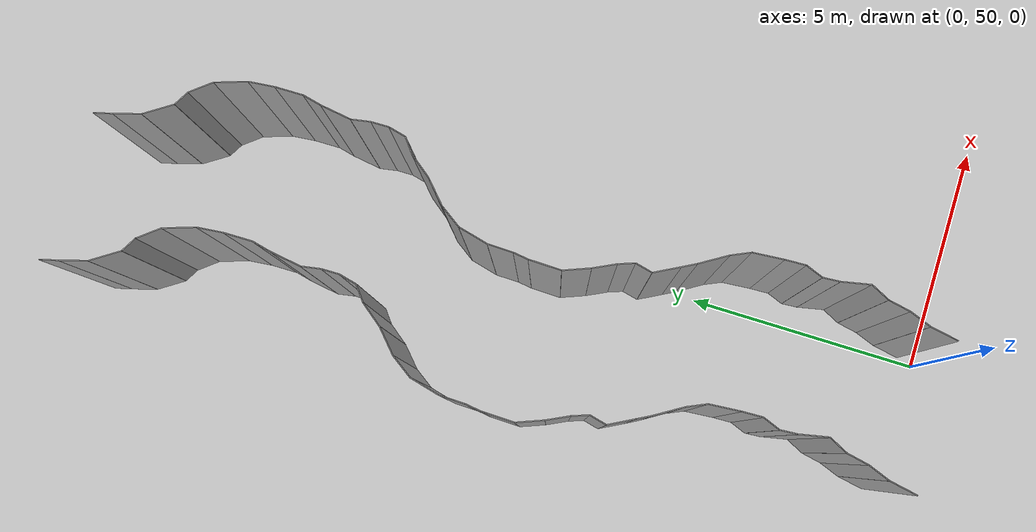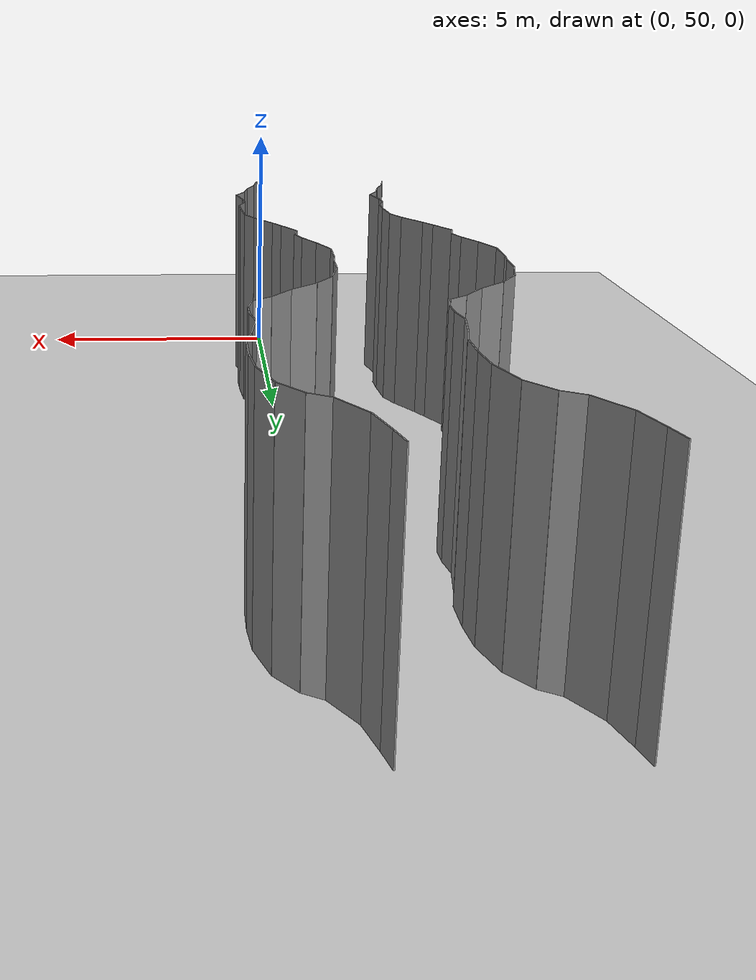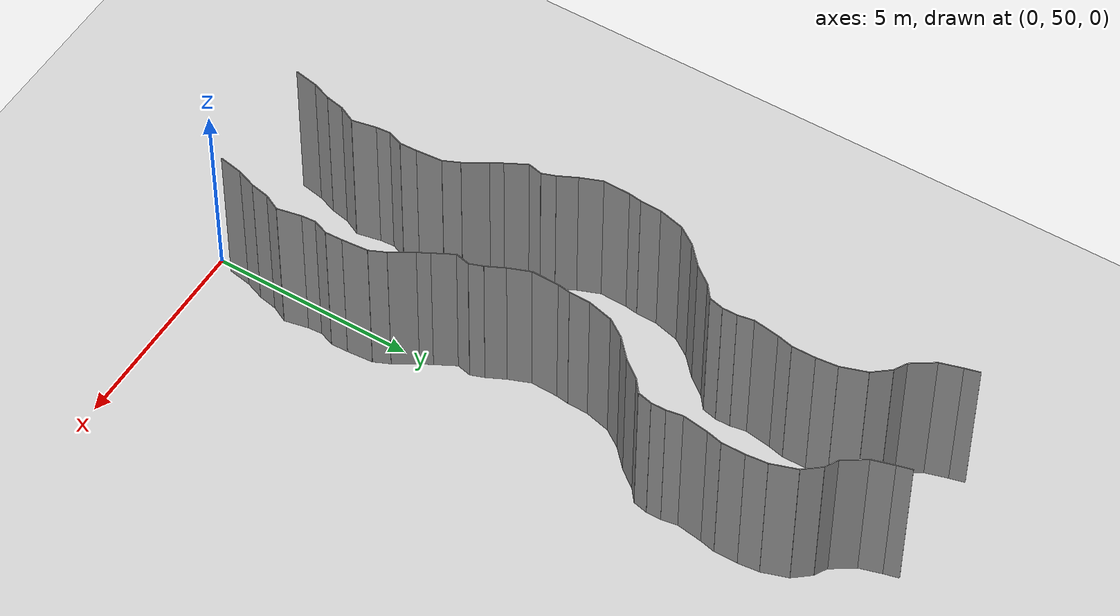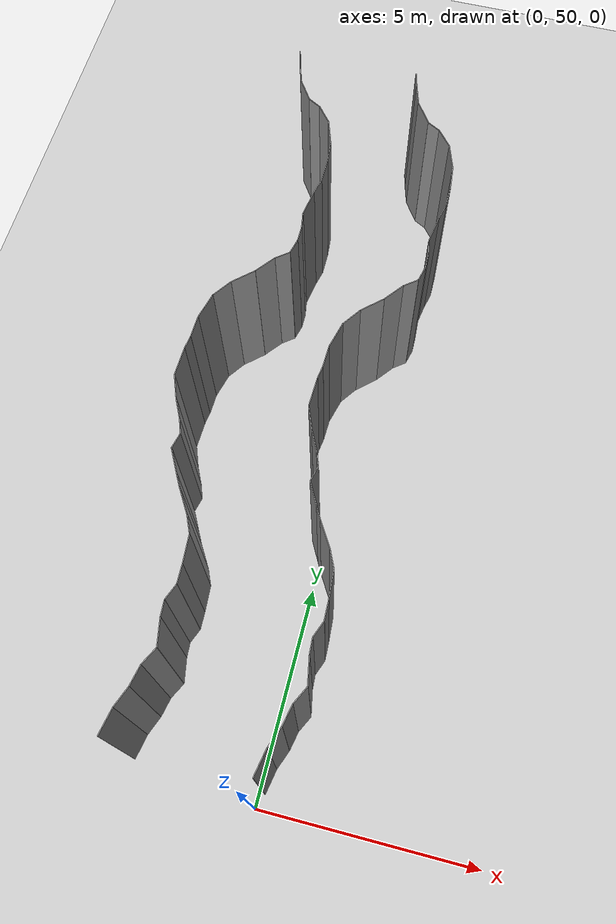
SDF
<sdf version="1.6">
 <world name="default">
  <model name="ground_plane">
   <static>1</static>
   <link name="link">
    <collision name="collision">
     <geometry><plane><normal>0 0 1</normal><size>200 200</size></plane></geometry>
     <surface><friction><ode><mu>100</mu><mu2>50</mu2></ode></friction></surface>
    </collision>
    <visual name="visual">
     <cast_shadows>0</cast_shadows>
     <geometry><plane><normal>0 0 1</normal><size>200 200</size></plane></geometry>
     <material>
      <script><uri>file://media/materials/scripts/gazebo.material</uri><name>Gazebo/Grey</name></script>
     </material>
    </visual>
   </link>
   <pose>0 100 0 0 -0 0</pose>
  </model>
  <model name="wall_224">
   <static>1</static>
   <pose>-2.8286769337761193 50.627891872682405 2 0 0 -0.18423424427518173</pose>
   <link name="link">
    <collision name="collision"><geometry><box><size>0.02 0.580149095409 4</size></box></geometry></collision>
    <visual name="visual">
     <material>
      <script><name>Gazebo/Grey</name><uri>file://media/materials/scripts/gazebo.material</uri></script>
     </material>
     <geometry><box><size>0.02 0.580149095409 4</size></box></geometry>
    </visual>
   </link>
  </model>
  <model name="wall_225">
   <static>1</static>
   <pose>0.17132306622388072 50.627891872682405 2 0 0 -0.18423424427518173</pose>
   <link name="link">
    <collision name="collision"><geometry><box><size>0.02 0.580149095409 4</size></box></geometry></collision>
    <visual name="visual">
     <material>
      <script><name>Gazebo/Grey</name><uri>file://media/materials/scripts/gazebo.material</uri></script>
     </material>
     <geometry><box><size>0.02 0.580149095409 4</size></box></geometry>
    </visual>
   </link>
  </model>
  <model name="wall_226">
   <static>1</static>
   <pose>-2.6917528820557632 51.13423837053062 2 0 0 -0.362101400546652</pose>
   <link name="link">
    <collision name="collision"><geometry><box><size>0.02 0.473036137834 4</size></box></geometry></collision>
    <visual name="visual">
     <material>
      <script><name>Gazebo/Grey</name><uri>file://media/materials/scripts/gazebo.material</uri></script>
     </material>
     <geometry><box><size>0.02 0.473036137834 4</size></box></geometry>
    </visual>
   </link>
  </model>
  <model name="wall_227">
   <static>1</static>
   <pose>0.30824711794423676 51.13423837053062 2 0 0 -0.362101400546652</pose>
   <link name="link">
    <collision name="collision"><geometry><box><size>0.02 0.473036137834 4</size></box></geometry></collision>
    <visual name="visual">
     <material>
      <script><name>Gazebo/Grey</name><uri>file://media/materials/scripts/gazebo.material</uri></script>
     </material>
     <geometry><box><size>0.02 0.473036137834 4</size></box></geometry>
    </visual>
   </link>
  </model>
  <model name="wall_228">
   <static>1</static>
   <pose>-2.563501841455428 51.57859780687657 2 0 0 -0.1966679591682121</pose>
   <link name="link">
    <collision name="collision"><geometry><box><size>0.02 0.455130505683 4</size></box></geometry></collision>
    <visual name="visual">
     <material>
      <script><name>Gazebo/Grey</name><uri>file://media/materials/scripts/gazebo.material</uri></script>
     </material>
     <geometry><box><size>0.02 0.455130505683 4</size></box></geometry>
    </visual>
   </link>
  </model>
  <model name="wall_229">
   <static>1</static>
   <pose>0.43649815854457197 51.57859780687657 2 0 0 -0.1966679591682121</pose>
   <link name="link">
    <collision name="collision"><geometry><box><size>0.02 0.455130505683 4</size></box></geometry></collision>
    <visual name="visual">
     <material>
      <script><name>Gazebo/Grey</name><uri>file://media/materials/scripts/gazebo.material</uri></script>
     </material>
     <geometry><box><size>0.02 0.455130505683 4</size></box></geometry>
    </visual>
   </link>
  </model>
  <model name="wall_230">
   <static>1</static>
   <pose>-2.423583382500638 51.992326976356004 2 0 0 -0.46438742453574205</pose>
   <link name="link">
    <collision name="collision"><geometry><box><size>0.02 0.426242031228 4</size></box></geometry></collision>
    <visual name="visual">
     <material>
      <script><name>Gazebo/Grey</name><uri>file://media/materials/scripts/gazebo.material</uri></script>
     </material>
     <geometry><box><size>0.02 0.426242031228 4</size></box></geometry>
    </visual>
   </link>
  </model>
  <model name="wall_231">
   <static>1</static>
   <pose>0.5764166174993619 51.992326976356004 2 0 0 -0.46438742453574205</pose>
   <link name="link">
    <collision name="collision"><geometry><box><size>0.02 0.426242031228 4</size></box></geometry></collision>
    <visual name="visual">
     <material>
      <script><name>Gazebo/Grey</name><uri>file://media/materials/scripts/gazebo.material</uri></script>
     </material>
     <geometry><box><size>0.02 0.426242031228 4</size></box></geometry>
    </visual>
   </link>
  </model>
  <model name="wall_232">
   <static>1</static>
   <pose>-2.3882785102778623 52.47499757940905 2 0 0 0.20305967393296098</pose>
   <link name="link">
    <collision name="collision"><geometry><box><size>0.02 0.59649539028 4</size></box></geometry></collision>
    <visual name="visual">
     <material>
      <script><name>Gazebo/Grey</name><uri>file://media/materials/scripts/gazebo.material</uri></script>
     </material>
     <geometry><box><size>0.02 0.59649539028 4</size></box></geometry>
    </visual>
   </link>
  </model>
  <model name="wall_233">
   <static>1</static>
   <pose>0.6117214897221377 52.47499757940905 2 0 0 0.20305967393296098</pose>
   <link name="link">
    <collision name="collision"><geometry><box><size>0.02 0.59649539028 4</size></box></geometry></collision>
    <visual name="visual">
     <material>
      <script><name>Gazebo/Grey</name><uri>file://media/materials/scripts/gazebo.material</uri></script>
     </material>
     <geometry><box><size>0.02 0.59649539028 4</size></box></geometry>
    </visual>
   </link>
  </model>
  <model name="wall_234">
   <static>1</static>
   <pose>-2.461127365312974 52.94002398206839 2 0 0 0.07333061164236196</pose>
   <link name="link">
    <collision name="collision"><geometry><box><size>0.02 0.34674480437 4</size></box></geometry></collision>
    <visual name="visual">
     <material>
      <script><name>Gazebo/Grey</name><uri>file://media/materials/scripts/gazebo.material</uri></script>
     </material>
     <geometry><box><size>0.02 0.34674480437 4</size></box></geometry>
    </visual>
   </link>
  </model>
  <model name="wall_235">
   <static>1</static>
   <pose>0.5388726346870261 52.94002398206839 2 0 0 0.07333061164236196</pose>
   <link name="link">
    <collision name="collision"><geometry><box><size>0.02 0.34674480437 4</size></box></geometry></collision>
    <visual name="visual">
     <material>
      <script><name>Gazebo/Grey</name><uri>file://media/materials/scripts/gazebo.material</uri></script>
     </material>
     <geometry><box><size>0.02 0.34674480437 4</size></box></geometry>
    </visual>
   </link>
  </model>
  <model name="wall_236">
   <static>1</static>
   <pose>-2.405460493102636 53.290769109215255 2 0 0 -0.3670244248531365</pose>
   <link name="link">
    <collision name="collision"><geometry><box><size>0.02 0.381055940114 4</size></box></geometry></collision>
    <visual name="visual">
     <material>
      <script><name>Gazebo/Grey</name><uri>file://media/materials/scripts/gazebo.material</uri></script>
     </material>
     <geometry><box><size>0.02 0.381055940114 4</size></box></geometry>
    </visual>
   </link>
  </model>
  <model name="wall_237">
   <static>1</static>
   <pose>0.5945395068973638 53.290769109215255 2 0 0 -0.3670244248531365</pose>
   <link name="link">
    <collision name="collision"><geometry><box><size>0.02 0.381055940114 4</size></box></geometry></collision>
    <visual name="visual">
     <material>
      <script><name>Gazebo/Grey</name><uri>file://media/materials/scripts/gazebo.material</uri></script>
     </material>
     <geometry><box><size>0.02 0.381055940114 4</size></box></geometry>
    </visual>
   </link>
  </model>
  <model name="wall_238">
   <static>1</static>
   <pose>-2.345247367321129 53.678215502802416 2 0 0 0.03889048941217032</pose>
   <link name="link">
    <collision name="collision"><geometry><box><size>0.02 0.419532691257 4</size></box></geometry></collision>
    <visual name="visual">
     <material>
      <script><name>Gazebo/Grey</name><uri>file://media/materials/scripts/gazebo.material</uri></script>
     </material>
     <geometry><box><size>0.02 0.419532691257 4</size></box></geometry>
    </visual>
   </link>
  </model>
  <model name="wall_239">
   <static>1</static>
   <pose>0.6547526326788708 53.678215502802416 2 0 0 0.03889048941217032</pose>
   <link name="link">
    <collision name="collision"><geometry><box><size>0.02 0.419532691257 4</size></box></geometry></collision>
    <visual name="visual">
     <material>
      <script><name>Gazebo/Grey</name><uri>file://media/materials/scripts/gazebo.material</uri></script>
     </material>
     <geometry><box><size>0.02 0.419532691257 4</size></box></geometry>
    </visual>
   </link>
  </model>
  <model name="wall_240">
   <static>1</static>
   <pose>-2.379041136549938 54.20516803432031 2 0 0 0.08061373334613624</pose>
   <link name="link">
    <collision name="collision"><geometry><box><size>0.02 0.636757484728 4</size></box></geometry></collision>
    <visual name="visual">
     <material>
      <script><name>Gazebo/Grey</name><uri>file://media/materials/scripts/gazebo.material</uri></script>
     </material>
     <geometry><box><size>0.02 0.636757484728 4</size></box></geometry>
    </visual>
   </link>
  </model>
  <model name="wall_241">
   <static>1</static>
   <pose>0.620958863450062 54.20516803432031 2 0 0 0.08061373334613624</pose>
   <link name="link">
    <collision name="collision"><geometry><box><size>0.02 0.636757484728 4</size></box></geometry></collision>
    <visual name="visual">
     <material>
      <script><name>Gazebo/Grey</name><uri>file://media/materials/scripts/gazebo.material</uri></script>
     </material>
     <geometry><box><size>0.02 0.636757484728 4</size></box></geometry>
    </visual>
   </link>
  </model>
  <model name="wall_242">
   <static>1</static>
   <pose>-2.493326375320523 54.71593024675746 2 0 0 0.42975237120318305</pose>
   <link name="link">
    <collision name="collision"><geometry><box><size>0.02 0.425528588681 4</size></box></geometry></collision>
    <visual name="visual">
     <material>
      <script><name>Gazebo/Grey</name><uri>file://media/materials/scripts/gazebo.material</uri></script>
     </material>
     <geometry><box><size>0.02 0.425528588681 4</size></box></geometry>
    </visual>
   </link>
  </model>
  <model name="wall_243">
   <static>1</static>
   <pose>0.5066736246794772 54.71593024675746 2 0 0 0.42975237120318305</pose>
   <link name="link">
    <collision name="collision"><geometry><box><size>0.02 0.425528588681 4</size></box></geometry></collision>
    <visual name="visual">
     <material>
      <script><name>Gazebo/Grey</name><uri>file://media/materials/scripts/gazebo.material</uri></script>
     </material>
     <geometry><box><size>0.02 0.425528588681 4</size></box></geometry>
    </visual>
   </link>
  </model>
  <model name="wall_244">
   <static>1</static>
   <pose>-2.7497497506080575 55.179395733147096 2 0 0 0.5559213344197211</pose>
   <link name="link">
    <collision name="collision"><geometry><box><size>0.02 0.635845148266 4</size></box></geometry></collision>
    <visual name="visual">
     <material>
      <script><name>Gazebo/Grey</name><uri>file://media/materials/scripts/gazebo.material</uri></script>
     </material>
     <geometry><box><size>0.02 0.635845148266 4</size></box></geometry>
    </visual>
   </link>
  </model>
  <model name="wall_245">
   <static>1</static>
   <pose>0.2502502493919425 55.179395733147096 2 0 0 0.5559213344197211</pose>
   <link name="link">
    <collision name="collision"><geometry><box><size>0.02 0.635845148266 4</size></box></geometry></collision>
    <visual name="visual">
     <material>
      <script><name>Gazebo/Grey</name><uri>file://media/materials/scripts/gazebo.material</uri></script>
     </material>
     <geometry><box><size>0.02 0.635845148266 4</size></box></geometry>
    </visual>
   </link>
  </model>
  <model name="wall_246">
   <static>1</static>
   <pose>-2.993416445667179 55.588345760556834 2 0 0 0.500045270697358</pose>
   <link name="link">
    <collision name="collision"><geometry><box><size>0.02 0.316563697601 4</size></box></geometry></collision>
    <visual name="visual">
     <material>
      <script><name>Gazebo/Grey</name><uri>file://media/materials/scripts/gazebo.material</uri></script>
     </material>
     <geometry><box><size>0.02 0.316563697601 4</size></box></geometry>
    </visual>
   </link>
  </model>
  <model name="wall_247">
   <static>1</static>
   <pose>0.0065835543328209845 55.588345760556834 2 0 0 0.500045270697358</pose>
   <link name="link">
    <collision name="collision"><geometry><box><size>0.02 0.316563697601 4</size></box></geometry></collision>
    <visual name="visual">
     <material>
      <script><name>Gazebo/Grey</name><uri>file://media/materials/scripts/gazebo.material</uri></script>
     </material>
     <geometry><box><size>0.02 0.316563697601 4</size></box></geometry>
    </visual>
   </link>
  </model>
  <model name="wall_248">
   <static>1</static>
   <pose>-3.2028115928954173 55.976138644152485 2 0 0 0.4923399696816713</pose>
   <link name="link">
    <collision name="collision"><geometry><box><size>0.02 0.5648721819 4</size></box></geometry></collision>
    <visual name="visual">
     <material>
      <script><name>Gazebo/Grey</name><uri>file://media/materials/scripts/gazebo.material</uri></script>
     </material>
     <geometry><box><size>0.02 0.5648721819 4</size></box></geometry>
    </visual>
   </link>
  </model>
  <model name="wall_249">
   <static>1</static>
   <pose>-0.20281159289541728 55.976138644152485 2 0 0 0.4923399696816713</pose>
   <link name="link">
    <collision name="collision"><geometry><box><size>0.02 0.5648721819 4</size></box></geometry></collision>
    <visual name="visual">
     <material>
      <script><name>Gazebo/Grey</name><uri>file://media/materials/scripts/gazebo.material</uri></script>
     </material>
     <geometry><box><size>0.02 0.5648721819 4</size></box></geometry>
    </visual>
   </link>
  </model>
  <model name="wall_250">
   <static>1</static>
   <pose>-3.2951565948110293 56.40173687648635 2 0 0 -0.22884436802210423</pose>
   <link name="link">
    <collision name="collision"><geometry><box><size>0.02 0.362875049032 4</size></box></geometry></collision>
    <visual name="visual">
     <material>
      <script><name>Gazebo/Grey</name><uri>file://media/materials/scripts/gazebo.material</uri></script>
     </material>
     <geometry><box><size>0.02 0.362875049032 4</size></box></geometry>
    </visual>
   </link>
  </model>
  <model name="wall_251">
   <static>1</static>
   <pose>-0.2951565948110293 56.40173687648635 2 0 0 -0.22884436802210423</pose>
   <link name="link">
    <collision name="collision"><geometry><box><size>0.02 0.362875049032 4</size></box></geometry></collision>
    <visual name="visual">
     <material>
      <script><name>Gazebo/Grey</name><uri>file://media/materials/scripts/gazebo.material</uri></script>
     </material>
     <geometry><box><size>0.02 0.362875049032 4</size></box></geometry>
    </visual>
   </link>
  </model>
  <model name="wall_252">
   <static>1</static>
   <pose>-3.313642719620716 56.740908775770606 2 0 0 0.3518531247030173</pose>
   <link name="link">
    <collision name="collision"><geometry><box><size>0.02 0.346134915748 4</size></box></geometry></collision>
    <visual name="visual">
     <material>
      <script><name>Gazebo/Grey</name><uri>file://media/materials/scripts/gazebo.material</uri></script>
     </material>
     <geometry><box><size>0.02 0.346134915748 4</size></box></geometry>
    </visual>
   </link>
  </model>
  <model name="wall_253">
   <static>1</static>
   <pose>-0.3136427196207161 56.740908775770606 2 0 0 0.3518531247030173</pose>
   <link name="link">
    <collision name="collision"><geometry><box><size>0.02 0.346134915748 4</size></box></geometry></collision>
    <visual name="visual">
     <material>
      <script><name>Gazebo/Grey</name><uri>file://media/materials/scripts/gazebo.material</uri></script>
     </material>
     <geometry><box><size>0.02 0.346134915748 4</size></box></geometry>
    </visual>
   </link>
  </model>
  <model name="wall_254">
   <static>1</static>
   <pose>-3.4834181041746666 57.12609403611358 2 0 0 0.4592177133481454</pose>
   <link name="link">
    <collision name="collision"><geometry><box><size>0.02 0.496922767624 4</size></box></geometry></collision>
    <visual name="visual">
     <material>
      <script><name>Gazebo/Grey</name><uri>file://media/materials/scripts/gazebo.material</uri></script>
     </material>
     <geometry><box><size>0.02 0.496922767624 4</size></box></geometry>
    </visual>
   </link>
  </model>
  <model name="wall_255">
   <static>1</static>
   <pose>-0.4834181041746666 57.12609403611358 2 0 0 0.4592177133481454</pose>
   <link name="link">
    <collision name="collision"><geometry><box><size>0.02 0.496922767624 4</size></box></geometry></collision>
    <visual name="visual">
     <material>
      <script><name>Gazebo/Grey</name><uri>file://media/materials/scripts/gazebo.material</uri></script>
     </material>
     <geometry><box><size>0.02 0.496922767624 4</size></box></geometry>
    </visual>
   </link>
  </model>
  <model name="wall_256">
   <static>1</static>
   <pose>-3.69728389070164 57.613537004417054 2 0 0 0.3734758570023561</pose>
   <link name="link">
    <collision name="collision"><geometry><box><size>0.02 0.568644214055 4</size></box></geometry></collision>
    <visual name="visual">
     <material>
      <script><name>Gazebo/Grey</name><uri>file://media/materials/scripts/gazebo.material</uri></script>
     </material>
     <geometry><box><size>0.02 0.568644214055 4</size></box></geometry>
    </visual>
   </link>
  </model>
  <model name="wall_257">
   <static>1</static>
   <pose>-0.6972838907016401 57.613537004417054 2 0 0 0.3734758570023561</pose>
   <link name="link">
    <collision name="collision"><geometry><box><size>0.02 0.568644214055 4</size></box></geometry></collision>
    <visual name="visual">
     <material>
      <script><name>Gazebo/Grey</name><uri>file://media/materials/scripts/gazebo.material</uri></script>
     </material>
     <geometry><box><size>0.02 0.568644214055 4</size></box></geometry>
    </visual>
   </link>
  </model>
  <model name="wall_258">
   <static>1</static>
   <pose>-3.7936412253315477 58.21406132099302 2 0 0 -0.02196979500458679</pose>
   <link name="link">
    <collision name="collision"><geometry><box><size>0.02 0.671766140717 4</size></box></geometry></collision>
    <visual name="visual">
     <material>
      <script><name>Gazebo/Grey</name><uri>file://media/materials/scripts/gazebo.material</uri></script>
     </material>
     <geometry><box><size>0.02 0.671766140717 4</size></box></geometry>
    </visual>
   </link>
  </model>
  <model name="wall_259">
   <static>1</static>
   <pose>-0.7936412253315477 58.21406132099302 2 0 0 -0.02196979500458679</pose>
   <link name="link">
    <collision name="collision"><geometry><box><size>0.02 0.671766140717 4</size></box></geometry></collision>
    <visual name="visual">
     <material>
      <script><name>Gazebo/Grey</name><uri>file://media/materials/scripts/gazebo.material</uri></script>
     </material>
     <geometry><box><size>0.02 0.671766140717 4</size></box></geometry>
    </visual>
   </link>
  </model>
  <model name="wall_260">
   <static>1</static>
   <pose>-3.765185656786522 58.70502109044272 2 0 0 -0.13501518498468634</pose>
   <link name="link">
    <collision name="collision"><geometry><box><size>0.02 0.313165542598 4</size></box></geometry></collision>
    <visual name="visual">
     <material>
      <script><name>Gazebo/Grey</name><uri>file://media/materials/scripts/gazebo.material</uri></script>
     </material>
     <geometry><box><size>0.02 0.313165542598 4</size></box></geometry>
    </visual>
   </link>
  </model>
  <model name="wall_261">
   <static>1</static>
   <pose>-0.7651856567865218 58.70502109044272 2 0 0 -0.13501518498468634</pose>
   <link name="link">
    <collision name="collision"><geometry><box><size>0.02 0.313165542598 4</size></box></geometry></collision>
    <visual name="visual">
     <material>
      <script><name>Gazebo/Grey</name><uri>file://media/materials/scripts/gazebo.material</uri></script>
     </material>
     <geometry><box><size>0.02 0.313165542598 4</size></box></geometry>
    </visual>
   </link>
  </model>
  <model name="wall_262">
   <static>1</static>
   <pose>-3.73868529192942 59.12050478224506 2 0 0 -0.020830427214200215</pose>
   <link name="link">
    <collision name="collision"><geometry><box><size>0.02 0.520764848218 4</size></box></geometry></collision>
    <visual name="visual">
     <material>
      <script><name>Gazebo/Grey</name><uri>file://media/materials/scripts/gazebo.material</uri></script>
     </material>
     <geometry><box><size>0.02 0.520764848218 4</size></box></geometry>
    </visual>
   </link>
  </model>
  <model name="wall_263">
   <static>1</static>
   <pose>-0.73868529192942 59.12050478224506 2 0 0 -0.020830427214200215</pose>
   <link name="link">
    <collision name="collision"><geometry><box><size>0.02 0.520764848218 4</size></box></geometry></collision>
    <visual name="visual">
     <material>
      <script><name>Gazebo/Grey</name><uri>file://media/materials/scripts/gazebo.material</uri></script>
     </material>
     <geometry><box><size>0.02 0.520764848218 4</size></box></geometry>
    </visual>
   </link>
  </model>
  <model name="wall_264">
   <static>1</static>
   <pose>-3.656890420826546 59.68961363414613 2 0 0 -0.24246447544069513</pose>
   <link name="link">
    <collision name="collision"><geometry><box><size>0.02 0.636174435851 4</size></box></geometry></collision>
    <visual name="visual">
     <material>
      <script><name>Gazebo/Grey</name><uri>file://media/materials/scripts/gazebo.material</uri></script>
     </material>
     <geometry><box><size>0.02 0.636174435851 4</size></box></geometry>
    </visual>
   </link>
  </model>
  <model name="wall_265">
   <static>1</static>
   <pose>-0.6568904208265458 59.68961363414613 2 0 0 -0.24246447544069513</pose>
   <link name="link">
    <collision name="collision"><geometry><box><size>0.02 0.636174435851 4</size></box></geometry></collision>
    <visual name="visual">
     <material>
      <script><name>Gazebo/Grey</name><uri>file://media/materials/scripts/gazebo.material</uri></script>
     </material>
     <geometry><box><size>0.02 0.636174435851 4</size></box></geometry>
    </visual>
   </link>
  </model>
  <model name="wall_266">
   <static>1</static>
   <pose>-3.4321546729347228 60.21524979680269 2 0 0 -0.600022220632513</pose>
   <link name="link">
    <collision name="collision"><geometry><box><size>0.02 0.525499054802 4</size></box></geometry></collision>
    <visual name="visual">
     <material>
      <script><name>Gazebo/Grey</name><uri>file://media/materials/scripts/gazebo.material</uri></script>
     </material>
     <geometry><box><size>0.02 0.525499054802 4</size></box></geometry>
    </visual>
   </link>
  </model>
  <model name="wall_267">
   <static>1</static>
   <pose>-0.43215467293472276 60.21524979680269 2 0 0 -0.600022220632513</pose>
   <link name="link">
    <collision name="collision"><geometry><box><size>0.02 0.525499054802 4</size></box></geometry></collision>
    <visual name="visual">
     <material>
      <script><name>Gazebo/Grey</name><uri>file://media/materials/scripts/gazebo.material</uri></script>
     </material>
     <geometry><box><size>0.02 0.525499054802 4</size></box></geometry>
    </visual>
   </link>
  </model>
  <model name="wall_268">
   <static>1</static>
   <pose>-3.060115632164612 60.63883047337219 2 0 0 -0.8247532173949356</pose>
   <link name="link">
    <collision name="collision"><geometry><box><size>0.02 0.609152173383 4</size></box></geometry></collision>
    <visual name="visual">
     <material>
      <script><name>Gazebo/Grey</name><uri>file://media/materials/scripts/gazebo.material</uri></script>
     </material>
     <geometry><box><size>0.02 0.609152173383 4</size></box></geometry>
    </visual>
   </link>
  </model>
  <model name="wall_269">
   <static>1</static>
   <pose>-0.06011563216461191 60.63883047337219 2 0 0 -0.8247532173949356</pose>
   <link name="link">
    <collision name="collision"><geometry><box><size>0.02 0.609152173383 4</size></box></geometry></collision>
    <visual name="visual">
     <material>
      <script><name>Gazebo/Grey</name><uri>file://media/materials/scripts/gazebo.material</uri></script>
     </material>
     <geometry><box><size>0.02 0.609152173383 4</size></box></geometry>
    </visual>
   </link>
  </model>
  <model name="wall_270">
   <static>1</static>
   <pose>-2.666712358078105 61.06651764247929 2 0 0 -0.655011640918654</pose>
   <link name="link">
    <collision name="collision"><geometry><box><size>0.02 0.557246810837 4</size></box></geometry></collision>
    <visual name="visual">
     <material>
      <script><name>Gazebo/Grey</name><uri>file://media/materials/scripts/gazebo.material</uri></script>
     </material>
     <geometry><box><size>0.02 0.557246810837 4</size></box></geometry>
    </visual>
   </link>
  </model>
  <model name="wall_271">
   <static>1</static>
   <pose>0.3332876419218951 61.06651764247929 2 0 0 -0.655011640918654</pose>
   <link name="link">
    <collision name="collision"><geometry><box><size>0.02 0.557246810837 4</size></box></geometry></collision>
    <visual name="visual">
     <material>
      <script><name>Gazebo/Grey</name><uri>file://media/materials/scripts/gazebo.material</uri></script>
     </material>
     <geometry><box><size>0.02 0.557246810837 4</size></box></geometry>
    </visual>
   </link>
  </model>
  <model name="wall_272">
   <static>1</static>
   <pose>-2.349222839583207 61.40412263598787 2 0 0 -0.9025407031360781</pose>
   <link name="link">
    <collision name="collision"><geometry><box><size>0.02 0.37650713673 4</size></box></geometry></collision>
    <visual name="visual">
     <material>
      <script><name>Gazebo/Grey</name><uri>file://media/materials/scripts/gazebo.material</uri></script>
     </material>
     <geometry><box><size>0.02 0.37650713673 4</size></box></geometry>
    </visual>
   </link>
  </model>
  <model name="wall_273">
   <static>1</static>
   <pose>0.6507771604167929 61.40412263598787 2 0 0 -0.9025407031360781</pose>
   <link name="link">
    <collision name="collision"><geometry><box><size>0.02 0.37650713673 4</size></box></geometry></collision>
    <visual name="visual">
     <material>
      <script><name>Gazebo/Grey</name><uri>file://media/materials/scripts/gazebo.material</uri></script>
     </material>
     <geometry><box><size>0.02 0.37650713673 4</size></box></geometry>
    </visual>
   </link>
  </model>
  <model name="wall_274">
   <static>1</static>
   <pose>-2.1582427827006874 61.70160800079946 2 0 0 -0.2345905831891398</pose>
   <link name="link">
    <collision name="collision"><geometry><box><size>0.02 0.371865776016 4</size></box></geometry></collision>
    <visual name="visual">
     <material>
      <script><name>Gazebo/Grey</name><uri>file://media/materials/scripts/gazebo.material</uri></script>
     </material>
     <geometry><box><size>0.02 0.371865776016 4</size></box></geometry>
    </visual>
   </link>
  </model>
  <model name="wall_275">
   <static>1</static>
   <pose>0.8417572172993126 61.70160800079946 2 0 0 -0.2345905831891398</pose>
   <link name="link">
    <collision name="collision"><geometry><box><size>0.02 0.371865776016 4</size></box></geometry></collision>
    <visual name="visual">
     <material>
      <script><name>Gazebo/Grey</name><uri>file://media/materials/scripts/gazebo.material</uri></script>
     </material>
     <geometry><box><size>0.02 0.371865776016 4</size></box></geometry>
    </visual>
   </link>
  </model>
  <model name="wall_276">
   <static>1</static>
   <pose>-2.117058410167025 62.0634088812668 2 0 0 0.011243735895900641</pose>
   <link name="link">
    <collision name="collision"><geometry><box><size>0.02 0.361944419672 4</size></box></geometry></collision>
    <visual name="visual">
     <material>
      <script><name>Gazebo/Grey</name><uri>file://media/materials/scripts/gazebo.material</uri></script>
     </material>
     <geometry><box><size>0.02 0.361944419672 4</size></box></geometry>
    </visual>
   </link>
  </model>
  <model name="wall_277">
   <static>1</static>
   <pose>0.8829415898329751 62.0634088812668 2 0 0 0.011243735895900641</pose>
   <link name="link">
    <collision name="collision"><geometry><box><size>0.02 0.361944419672 4</size></box></geometry></collision>
    <visual name="visual">
     <material>
      <script><name>Gazebo/Grey</name><uri>file://media/materials/scripts/gazebo.material</uri></script>
     </material>
     <geometry><box><size>0.02 0.361944419672 4</size></box></geometry>
    </visual>
   </link>
  </model>
  <model name="wall_278">
   <static>1</static>
   <pose>-2.153473833201927 62.44051981829725 2 0 0 0.1735146673340026</pose>
   <link name="link">
    <collision name="collision"><geometry><box><size>0.02 0.398280894539 4</size></box></geometry></collision>
    <visual name="visual">
     <material>
      <script><name>Gazebo/Grey</name><uri>file://media/materials/scripts/gazebo.material</uri></script>
     </material>
     <geometry><box><size>0.02 0.398280894539 4</size></box></geometry>
    </visual>
   </link>
  </model>
  <model name="wall_279">
   <static>1</static>
   <pose>0.846526166798073 62.44051981829725 2 0 0 0.1735146673340026</pose>
   <link name="link">
    <collision name="collision"><geometry><box><size>0.02 0.398280894539 4</size></box></geometry></collision>
    <visual name="visual">
     <material>
      <script><name>Gazebo/Grey</name><uri>file://media/materials/scripts/gazebo.material</uri></script>
     </material>
     <geometry><box><size>0.02 0.398280894539 4</size></box></geometry>
    </visual>
   </link>
  </model>
  <model name="wall_280">
   <static>1</static>
   <pose>-2.13938833743807 62.95770342895968 2 0 0 -0.14983767233353693</pose>
   <link name="link">
    <collision name="collision"><geometry><box><size>0.02 0.649342562148 4</size></box></geometry></collision>
    <visual name="visual">
     <material>
      <script><name>Gazebo/Grey</name><uri>file://media/materials/scripts/gazebo.material</uri></script>
     </material>
     <geometry><box><size>0.02 0.649342562148 4</size></box></geometry>
    </visual>
   </link>
  </model>
  <model name="wall_281">
   <static>1</static>
   <pose>0.8606116625619298 62.95770342895968 2 0 0 -0.14983767233353693</pose>
   <link name="link">
    <collision name="collision"><geometry><box><size>0.02 0.649342562148 4</size></box></geometry></collision>
    <visual name="visual">
     <material>
      <script><name>Gazebo/Grey</name><uri>file://media/materials/scripts/gazebo.material</uri></script>
     </material>
     <geometry><box><size>0.02 0.649342562148 4</size></box></geometry>
    </visual>
   </link>
  </model>
  <model name="wall_282">
   <static>1</static>
   <pose>-2.046803237152663 63.47033487870474 2 0 0 -0.22632316989173792</pose>
   <link name="link">
    <collision name="collision"><geometry><box><size>0.02 0.393223991161 4</size></box></geometry></collision>
    <visual name="visual">
     <material>
      <script><name>Gazebo/Grey</name><uri>file://media/materials/scripts/gazebo.material</uri></script>
     </material>
     <geometry><box><size>0.02 0.393223991161 4</size></box></geometry>
    </visual>
   </link>
  </model>
  <model name="wall_283">
   <static>1</static>
   <pose>0.953196762847337 63.47033487870474 2 0 0 -0.22632316989173792</pose>
   <link name="link">
    <collision name="collision"><geometry><box><size>0.02 0.393223991161 4</size></box></geometry></collision>
    <visual name="visual">
     <material>
      <script><name>Gazebo/Grey</name><uri>file://media/materials/scripts/gazebo.material</uri></script>
     </material>
     <geometry><box><size>0.02 0.393223991161 4</size></box></geometry>
    </visual>
   </link>
  </model>
  <model name="wall_284">
   <static>1</static>
   <pose>-2.005313145479833 63.9525974231991 2 0 0 0.009044030641496755</pose>
   <link name="link">
    <collision name="collision"><geometry><box><size>0.02 0.581352853448 4</size></box></geometry></collision>
    <visual name="visual">
     <material>
      <script><name>Gazebo/Grey</name><uri>file://media/materials/scripts/gazebo.material</uri></script>
     </material>
     <geometry><box><size>0.02 0.581352853448 4</size></box></geometry>
    </visual>
   </link>
  </model>
  <model name="wall_285">
   <static>1</static>
   <pose>0.9946868545201668 63.9525974231991 2 0 0 0.009044030641496755</pose>
   <link name="link">
    <collision name="collision"><geometry><box><size>0.02 0.581352853448 4</size></box></geometry></collision>
    <visual name="visual">
     <material>
      <script><name>Gazebo/Grey</name><uri>file://media/materials/scripts/gazebo.material</uri></script>
     </material>
     <geometry><box><size>0.02 0.581352853448 4</size></box></geometry>
    </visual>
   </link>
  </model>
  <model name="wall_286">
   <static>1</static>
   <pose>-2.034699134456996 64.5070003327019 2 0 0 0.10110739393432781</pose>
   <link name="link">
    <collision name="collision"><geometry><box><size>0.02 0.530184392669 4</size></box></geometry></collision>
    <visual name="visual">
     <material>
      <script><name>Gazebo/Grey</name><uri>file://media/materials/scripts/gazebo.material</uri></script>
     </material>
     <geometry><box><size>0.02 0.530184392669 4</size></box></geometry>
    </visual>
   </link>
  </model>
  <model name="wall_287">
   <static>1</static>
   <pose>0.965300865543004 64.5070003327019 2 0 0 0.10110739393432781</pose>
   <link name="link">
    <collision name="collision"><geometry><box><size>0.02 0.530184392669 4</size></box></geometry></collision>
    <visual name="visual">
     <material>
      <script><name>Gazebo/Grey</name><uri>file://media/materials/scripts/gazebo.material</uri></script>
     </material>
     <geometry><box><size>0.02 0.530184392669 4</size></box></geometry>
    </visual>
   </link>
  </model>
  <model name="wall_288">
   <static>1</static>
   <pose>-2.1677073839547902 65.08758160007486 2 0 0 0.3235583431945094</pose>
   <link name="link">
    <collision name="collision"><geometry><box><size>0.02 0.668367323823 4</size></box></geometry></collision>
    <visual name="visual">
     <material>
      <script><name>Gazebo/Grey</name><uri>file://media/materials/scripts/gazebo.material</uri></script>
     </material>
     <geometry><box><size>0.02 0.668367323823 4</size></box></geometry>
    </visual>
   </link>
  </model>
  <model name="wall_289">
   <static>1</static>
   <pose>0.8322926160452098 65.08758160007486 2 0 0 0.3235583431945094</pose>
   <link name="link">
    <collision name="collision"><geometry><box><size>0.02 0.668367323823 4</size></box></geometry></collision>
    <visual name="visual">
     <material>
      <script><name>Gazebo/Grey</name><uri>file://media/materials/scripts/gazebo.material</uri></script>
     </material>
     <geometry><box><size>0.02 0.668367323823 4</size></box></geometry>
    </visual>
   </link>
  </model>
  <model name="wall_290">
   <static>1</static>
   <pose>-2.439908405922695 65.60724290500595 2 0 0 0.68575188821314</pose>
   <link name="link">
    <collision name="collision"><geometry><box><size>0.02 0.524117084473 4</size></box></geometry></collision>
    <visual name="visual">
     <material>
      <script><name>Gazebo/Grey</name><uri>file://media/materials/scripts/gazebo.material</uri></script>
     </material>
     <geometry><box><size>0.02 0.524117084473 4</size></box></geometry>
    </visual>
   </link>
  </model>
  <model name="wall_291">
   <static>1</static>
   <pose>0.560091594077305 65.60724290500595 2 0 0 0.68575188821314</pose>
   <link name="link">
    <collision name="collision"><geometry><box><size>0.02 0.524117084473 4</size></box></geometry></collision>
    <visual name="visual">
     <material>
      <script><name>Gazebo/Grey</name><uri>file://media/materials/scripts/gazebo.material</uri></script>
     </material>
     <geometry><box><size>0.02 0.524117084473 4</size></box></geometry>
    </visual>
   </link>
  </model>
  <model name="wall_292">
   <static>1</static>
   <pose>-2.7584441042970367 65.89496197875444 2 0 0 1.0630430951931553</pose>
   <link name="link">
    <collision name="collision"><geometry><box><size>0.02 0.349230844006 4</size></box></geometry></collision>
    <visual name="visual">
     <material>
      <script><name>Gazebo/Grey</name><uri>file://media/materials/scripts/gazebo.material</uri></script>
     </material>
     <geometry><box><size>0.02 0.349230844006 4</size></box></geometry>
    </visual>
   </link>
  </model>
  <model name="wall_293">
   <static>1</static>
   <pose>0.24155589570296332 65.89496197875444 2 0 0 1.0630430951931553</pose>
   <link name="link">
    <collision name="collision"><geometry><box><size>0.02 0.349230844006 4</size></box></geometry></collision>
    <visual name="visual">
     <material>
      <script><name>Gazebo/Grey</name><uri>file://media/materials/scripts/gazebo.material</uri></script>
     </material>
     <geometry><box><size>0.02 0.349230844006 4</size></box></geometry>
    </visual>
   </link>
  </model>
  <model name="wall_294">
   <static>1</static>
   <pose>-3.093853234018744 66.25097736652789 2 0 0 0.5932957097585152</pose>
   <link name="link">
    <collision name="collision"><geometry><box><size>0.02 0.653995617689 4</size></box></geometry></collision>
    <visual name="visual">
     <material>
      <script><name>Gazebo/Grey</name><uri>file://media/materials/scripts/gazebo.material</uri></script>
     </material>
     <geometry><box><size>0.02 0.653995617689 4</size></box></geometry>
    </visual>
   </link>
  </model>
  <model name="wall_295">
   <static>1</static>
   <pose>-0.09385323401874412 66.25097736652789 2 0 0 0.5932957097585152</pose>
   <link name="link">
    <collision name="collision"><geometry><box><size>0.02 0.653995617689 4</size></box></geometry></collision>
    <visual name="visual">
     <material>
      <script><name>Gazebo/Grey</name><uri>file://media/materials/scripts/gazebo.material</uri></script>
     </material>
     <geometry><box><size>0.02 0.653995617689 4</size></box></geometry>
    </visual>
   </link>
  </model>
  <model name="wall_296">
   <static>1</static>
   <pose>-3.3558414895107216 66.79102270963669 2 0 0 0.286283024774986</pose>
   <link name="link">
    <collision name="collision"><geometry><box><size>0.02 0.560680880359 4</size></box></geometry></collision>
    <visual name="visual">
     <material>
      <script><name>Gazebo/Grey</name><uri>file://media/materials/scripts/gazebo.material</uri></script>
     </material>
     <geometry><box><size>0.02 0.560680880359 4</size></box></geometry>
    </visual>
   </link>
  </model>
  <model name="wall_297">
   <static>1</static>
   <pose>-0.3558414895107216 66.79102270963669 2 0 0 0.286283024774986</pose>
   <link name="link">
    <collision name="collision"><geometry><box><size>0.02 0.560680880359 4</size></box></geometry></collision>
    <visual name="visual">
     <material>
      <script><name>Gazebo/Grey</name><uri>file://media/materials/scripts/gazebo.material</uri></script>
     </material>
     <geometry><box><size>0.02 0.560680880359 4</size></box></geometry>
    </visual>
   </link>
  </model>
  <model name="wall_298">
   <static>1</static>
   <pose>-3.4821791886363176 67.2426120343176 2 0 0 0.2527342036406283</pose>
   <link name="link">
    <collision name="collision"><geometry><box><size>0.02 0.377303452197 4</size></box></geometry></collision>
    <visual name="visual">
     <material>
      <script><name>Gazebo/Grey</name><uri>file://media/materials/scripts/gazebo.material</uri></script>
     </material>
     <geometry><box><size>0.02 0.377303452197 4</size></box></geometry>
    </visual>
   </link>
  </model>
  <model name="wall_299">
   <static>1</static>
   <pose>-0.4821791886363176 67.2426120343176 2 0 0 0.2527342036406283</pose>
   <link name="link">
    <collision name="collision"><geometry><box><size>0.02 0.377303452197 4</size></box></geometry></collision>
    <visual name="visual">
     <material>
      <script><name>Gazebo/Grey</name><uri>file://media/materials/scripts/gazebo.material</uri></script>
     </material>
     <geometry><box><size>0.02 0.377303452197 4</size></box></geometry>
    </visual>
   </link>
  </model>
 </world>
</sdf>
